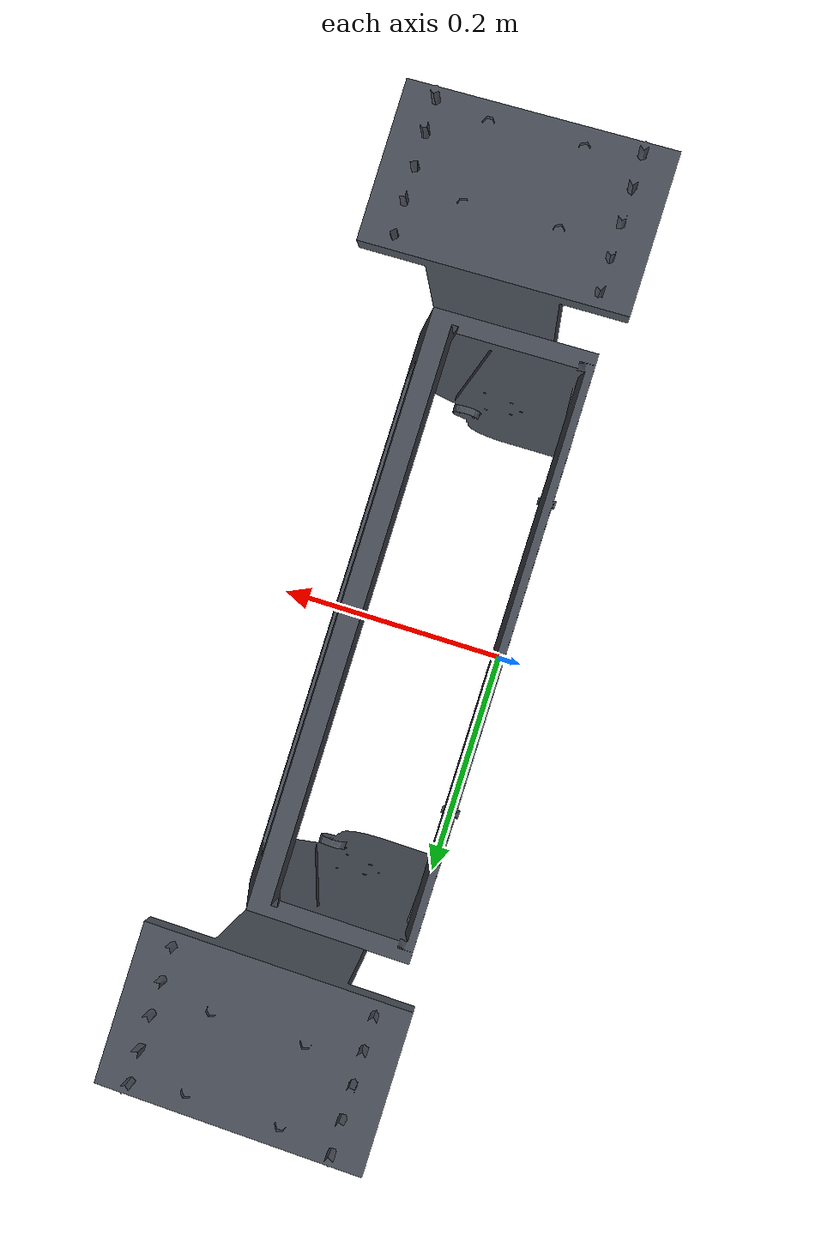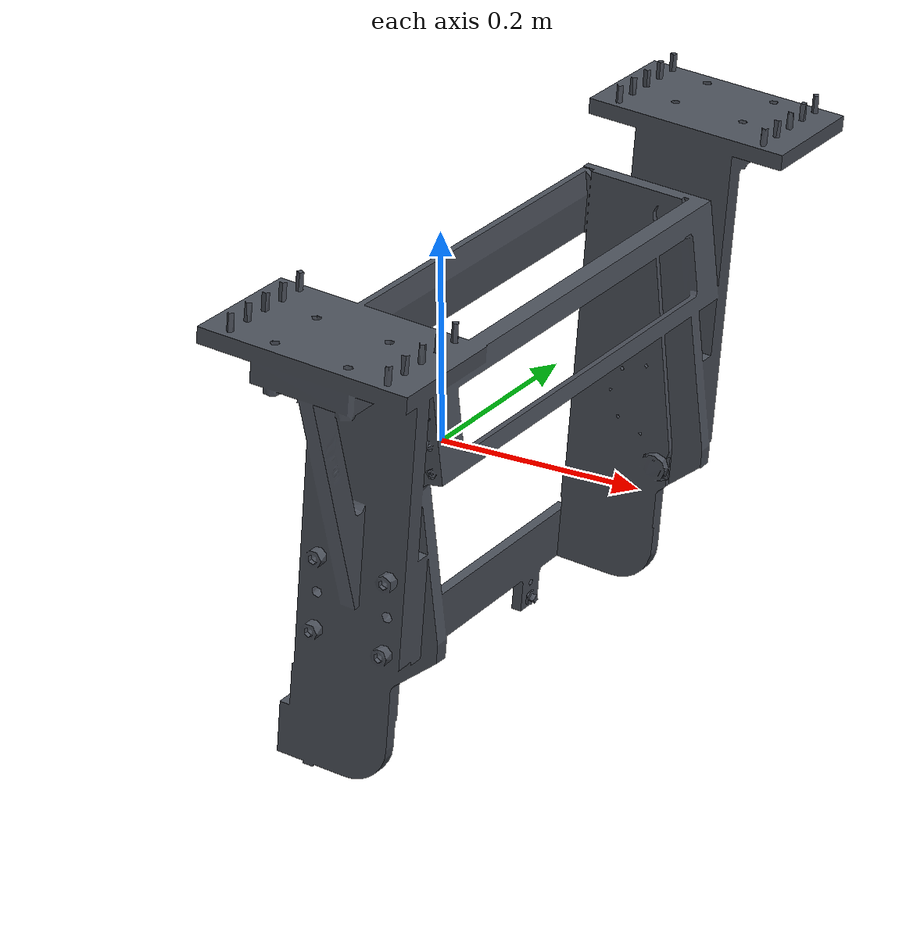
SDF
<?xml version="1.0"?>
<sdf version="1.9">
  <model name="slot_fixture">
    <static>true</static>
    <link name="slot_fixture_link">
      <collision name="collision">
        <geometry>
          <mesh>
            <uri>model://cs625_task/slot_fixture/meshes/slot_fixture.stl</uri>
          </mesh>
        </geometry>
        <surface>
          <friction>
            <ode><mu>0.4</mu><mu2>0.4</mu2></ode>
          </friction>
        </surface>
      </collision>

      <visual name="visual">
        <geometry>
          <mesh>
            <uri>model://cs625_task/slot_fixture/meshes/slot_fixture.stl</uri>
          </mesh>
        </geometry>
        <material>
          <ambient>0.30 0.32 0.36 1</ambient>
          <diffuse>0.30 0.32 0.36 1</diffuse>
        </material>
      </visual>
    </link>
  </model>
</sdf>
